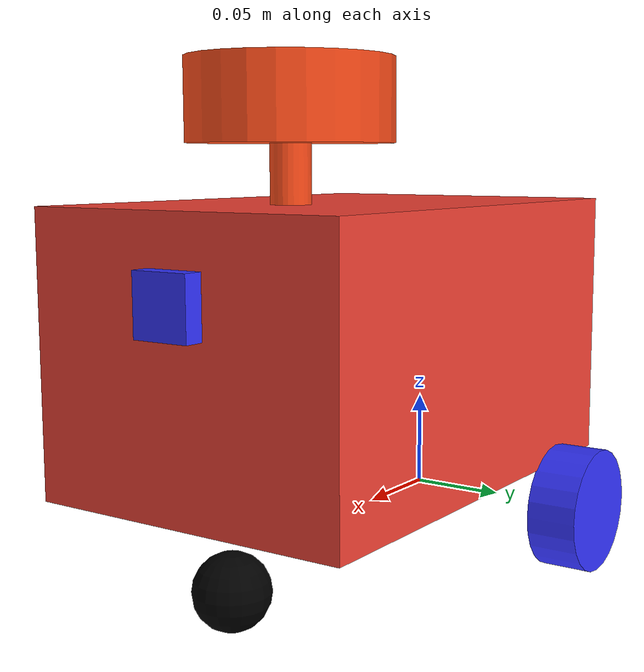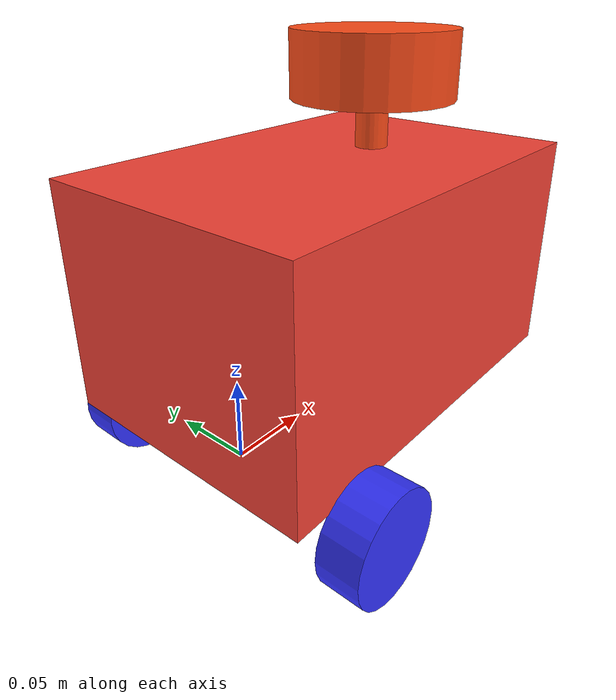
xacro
<?xml version="1.0"?>
<robot xmlns:xacro="http://www.ros.org/wiki/xacro" name="differential_robot">
    <xacro:include filename="urdf.xacro"/>
    <xacro:include filename="gazebo.control.xacro"/>
    <xacro:include filename="ros2Control.xacro"/>
    <xacro:include filename="lidar.sensor.xacro"/>
    <xacro:include filename="camera.xacro"/>
</robot>

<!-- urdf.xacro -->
<robot xmlns:xacro="http://www.ros.org/wiki/xacro">
<!--setting material properties which will be used later-->
<xacro:include filename="inertia.xacro"/>
<!-- Import the wheel macro -->
<xacro:include filename="$(find my_robot)/robot_urdf_description/wheel_macro.xacro"/>

<!-- Define chassisproperties -->
<xacro:property name="chassis_length" value="0.25"/>
<xacro:property name="chassis_width" value="0.17"/>
<xacro:property name="chassis_height" value="0.14"/>
<xacro:property name="chassis_mass" value="0.7"/>
<xacro:property name="chassis_offset_x" value="0.045"/> <!-- relative base link-->
<xacro:property name= "chassis_offset_z" value= "0.023"/> <!-- relative base link-->
<!--  wheel properties -->
<xacro:property name="driven_wheel_thickness" value="0.026"/>
<xacro:property name="driven_wheel_radius" value="0.0325"/>
<xacro:property name="driven_wheel_mass" value="0.02"/> <!--change with actual mass -->
<xacro:property name="driven_wheel_offset_y" value ="0.0975"/> <!-- relative to base link-->
<!--  castor wheel properties -->
<xacro:property name="castor_wheel_thickness" value="0.022"/> <!--used for cylinderical castor wheel-->
<xacro:property name="castor_wheel_radius" value="0.019"/>
<xacro:property name="castor_wheel_mass" value="0.01"/> <!--change with actual mass -->
<xacro:property name= "castor_wheel_offset_x" value="0.215"/>
<!-- relative to chassis-->
<xacro:property name= "castor_wheel_offset_z" value="${-0.038}"/> <!-- relative to chassis-->

<!--constants-->
<xacro:property name="PI" value="3.14159"/>

<!-- setting material colors-->

<material name="White">
    <color rgba="1 1 1 1"/>
</material>
<material name="Orange">
    <color rgba="1 0.3 0.1 1"/>
</material>
<material name="Blue">
    <color rgba="0.2 0.2 1 1"/>
</material>
<material name="Black">
    <color rgba="0 0 0 1"/>
</material>
<material name="Brown">
    <color rgba="${222/255} ${207/255} ${195/255} 1.0"/>
</material>
<material name="Red">
    <color rgba="0.96 0.26 0.21 1.0"/>
</material>

<material name="Dark">
    <color rgba="0.3 0.3 0.3 1.0"/>
</material>

<material name="light_black">
    <color rgba="0.4 0.4 0.4 1.0"/>
</material>
<material name="green">
    <color rgba="0.0 0.8 0.0 1.0"/>
  </material>

  <material name="grey">
    <color rgba="0.5 0.5 0.5 1.0"/>
  </material>

<!--setting up the base link-->
<link name="base_link">
</link>

<!-- adding base foot print link for simultanuous localization and mapping-->
<link name="base_footprint">
</link>

<joint name ="base_footprint_joint" type="fixed">
    <parent link="base_link"/>
    <child link="base_footprint"/>
    <origin xyz="0 0 0" rpy="0 0 0"/>
</joint>

<!--##################### robot chassis link ##################-->

<link name="chassis_link">
    <visual>
        <origin xyz="${chassis_length/2} 0 ${chassis_height/2}"/> <!-- this is relative to chassis link-->
        <geometry>
            <box size="${chassis_length} ${chassis_width} ${chassis_height}"/>
        </geometry>
        <material name="Red"/>
    </visual>
    <collision>
        <origin xyz="${chassis_length/2} 0 ${chassis_height/2}"/>
        <geometry>
            <box size="${chassis_length} ${chassis_width} ${chassis_height}"/>
        </geometry>
    </collision>
    <xacro:chassis_inertia mass="${chassis_mass}" x="${chassis_length}" y="${chassis_width}" z="${chassis_height}">
        <origin xyz="${chassis_length/2} 0 ${chassis_height/2}" rpy="0 0 0"/>
    </xacro:chassis_inertia>
</link>

<joint name="chassis_joint" type="fixed">
    <parent link="base_link"/>
    <child link="chassis_link"/>
    <origin xyz="${-chassis_offset_x} 0 ${chassis_offset_z}"/> <!-- change to wheel x and z offset after measurement for real robot-->
</joint>
 <!--adding gazebo reference for displaying the exact color of the robot-->
<gazebo reference="chassis_link">
    <material>Gazebo/Red</material>
</gazebo>

<!-- Use the macro for left and right wheels -->
<xacro:wheel_link
    wheel_name="left_wheel"
    wheel_radius ="${driven_wheel_radius}"
    wheel_length ="${driven_wheel_thickness}"
    wheel_mass="${driven_wheel_mass}"
    y_offset="${driven_wheel_offset_y}"
    axis_direction="-${PI/2}"
    axis_of_rotation = "1" /> <!-- Indicates rotation of the wheels along the Z axis-->

<xacro:wheel_link
    wheel_name="right_wheel"
    wheel_radius="${driven_wheel_radius}"
    wheel_length="${driven_wheel_thickness}"
    wheel_mass="${driven_wheel_mass}"
    y_offset="-${driven_wheel_offset_y}"
    axis_direction="${PI/2}"
    axis_of_rotation = "-1" /> <!-- Indicates rotation of the wheels along the Z axis-->

<!-- caster wheel link-->
<link name="castor_wheel">
    <visual>
        <geometry>
            <sphere radius="${castor_wheel_radius}"/>
        </geometry>
        <material name="Black"/>
    </visual>
    <collision>
        <geometry>
            <sphere radius="${castor_wheel_radius}"/>
        </geometry>
    </collision>
    <xacro:inertia_of_sphere mass="${castor_wheel_mass}" radius="${castor_wheel_radius}">
        <origin xyz="0 0 0" rpy="0 0 0"/>
    </xacro:inertia_of_sphere>
</link>

<gazebo reference="castor_wheel">
    <material>Gazebo/Black</material>
    <mu1 value="0.001"/>
    <mu2 value="0.001"/>
</gazebo>

<joint name="castor_wheel_joint" type="fixed">
    <parent link="chassis_link"/>
    <child link="castor_wheel"/>
    <origin xyz="${castor_wheel_offset_x} 0 ${castor_wheel_offset_z}"/>
</joint>

</robot>

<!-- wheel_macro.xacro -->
<robot xmlns:xacro="http://www.ros.org/wiki/xacro">

    <!-- Define wheel macro -->
    <xacro:macro name="wheel_link" params="wheel_name wheel_radius wheel_length wheel_mass y_offset axis_direction axis_of_rotation">
        <link name="${wheel_name}">
            <visual>
                <geometry>
                    <cylinder radius="${wheel_radius}" length="${wheel_length}"/>
                </geometry>
                <material name="Blue"/>
            </visual>
            <collision>
                <geometry>
                    <cylinder radius="${wheel_radius}" length="${wheel_length}"/>
                </geometry>
            </collision>
            <xacro:inertia_of_cylinder mass="${wheel_mass}" radius="${wheel_radius}" length="${wheel_length}">
                <origin xyz="0 0 0" rpy="0 0 0"/>
            </xacro:inertia_of_cylinder>
        </link>

        <gazebo reference="${wheel_name}">
            <material>Gazebo/Blue</material>
        </gazebo>

        <joint name="${wheel_name}_joint" type="continuous">
            <parent link="base_link"/>
            <child link="${wheel_name}"/>
            <origin xyz="0 ${y_offset} 0" rpy="${axis_direction} 0 0"/>
            <axis xyz="0 0 ${axis_of_rotation}"/>
        </joint>
    </xacro:macro>

</robot>

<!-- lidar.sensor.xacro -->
<!-- http://wiki.ros.org/urdf/XML/link -->
<robot xmlns:xacro="http://www.ros.org/wiki/xacro">

<link name="lidar_link">
   <visual>
        <geometry>
            <cylinder radius="0.05" length="0.04"/>
        </geometry>
        <material name="Orange"/>
    </visual>

    <visual>
        <origin xyz="0 0 -0.05"/>
        <geometry>
            <cylinder radius ="0.01" length= "0.1"/>
        </geometry>
        <material name="Orange"/>
    </visual>

    <collision>
        <geometry>
            <cylinder radius="0.05" length= "0.04"/>
        </geometry>
    </collision>
    <xacro:inertia_of_cylinder mass="0.1" radius="0.05" length= "0.04">
        <origin xyz="0 0 0" rpy="0 0 0"/>
    </xacro:inertia_of_cylinder>
</link>

<joint name="lidar_link_joint" type="fixed">
    <parent link="base_link"/>
    <child link="lidar_link"/>
    <origin xyz="0.122 0 0.212" rpy="0 0 0"/>
    <axis xyz="0 0 0"/>
</joint>

<gazebo reference="lidar_link"> <!--changed lidar_link to lidar_link-->
    <material name="Orange"/>
    <sensor name="lidar_link" type="gpu_lidar">
        <pose> 0 0 0 0 0 0 </pose>
        <visualize>true</visualize>
        <always_on>true</always_on>
        <update_rate>10</update_rate>

        <lidar>
            <scan>
                <horizontal>
                    <samples>360</samples>
                    <min_angle>-3.14</min_angle>
                    <max_angle>3.14</max_angle>
                </horizontal>
            </scan>

                <range>
                    <min>0.3</min>
                    <max>12</max>
                </range>
        </lidar>
        <gz_frame_id>lidar_link</gz_frame_id>
        <topic>scan</topic>
    </sensor>
</gazebo>

</robot>

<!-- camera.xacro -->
<robot xmlns:xacro="http://www.ros.org/wiki/xacro" >

    <link name="camera_link">
        <visual>
            <geometry>
                <box size="0.010 0.03 0.03"/>
            </geometry>
            <material name="Blue"/>
        </visual>
    </link>

    <joint name="camera_joint" type="fixed">
        <parent link="chassis_link"/>
        <child link="camera_link"/>
        <origin xyz="0.255 0 0.1" rpy="0 0 0"/>
    </joint>

    <joint name="camera_optical_joint" type="fixed">
        <parent link="camera_link"/>
        <child link="camera_link_optical"/>
        <origin xyz="0 0 0" rpy="${-pi/2} 0 ${-pi/2}"/>
    </joint>

    <link name="camera_link_optical"></link>

    <gazebo reference="camera_link">
        <material name ="Blue"/>

        <sensor name="rgb_camera" type="camera">
            <pose> 0 0 0 0 0 0 </pose>
            <always_on>true</always_on>
            <visualize>false</visualize>
            <update_rate>10</update_rate>

            <camera>
                <horizontal_fov>1.089</horizontal_fov>

                <image>
                    <format>R8G8B8</format>
                    <width>640</width>
                    <height>480</height>
                </image>

                <clip>
                    <near>0.05</near>
                    <far>8.0</far>
                </clip>

            </camera>
            <topic>camera/image_raw</topic>
            <gz_frame_id>camera_link_optical</gz_frame_id> <!-- check out if camera works without this tag-->
        </sensor>
    </gazebo>

</robot>
